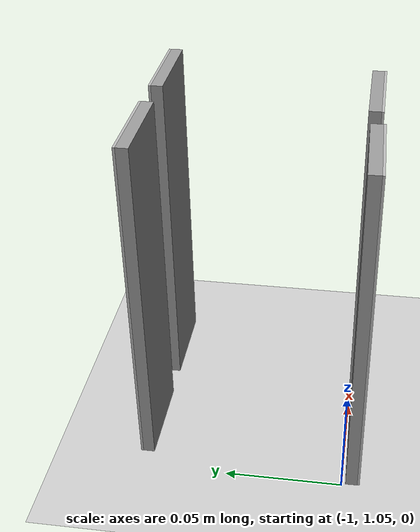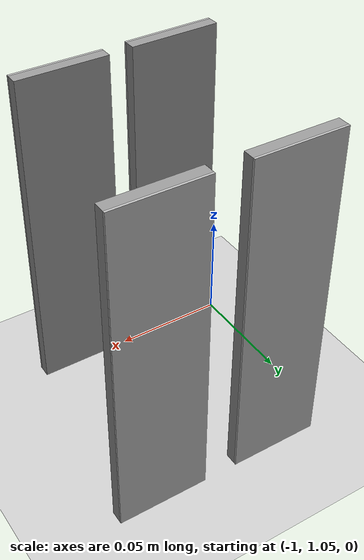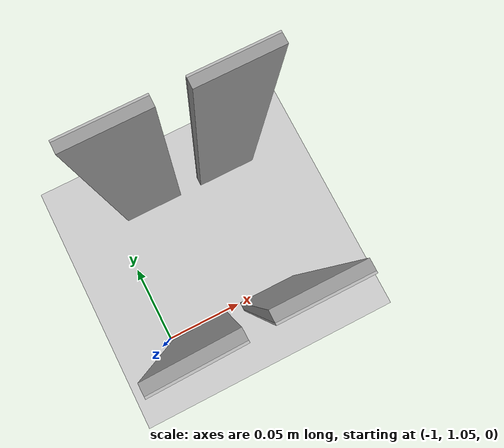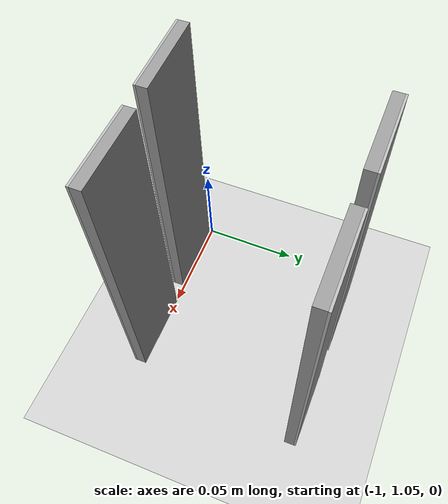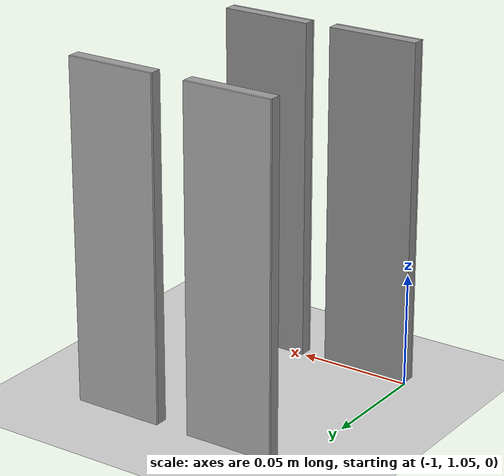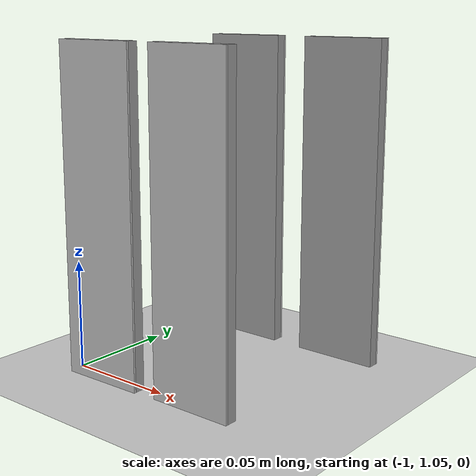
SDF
<sdf version="1.7">
 <world name="default">
  <model name="ground_plane">
   <static>1</static>
   <link name="link">
    <collision name="collision">
     <geometry><plane><normal>0 0 1</normal><size>100 100</size></plane></geometry>
     <surface>
      <contact><collide_bitmask>65535</collide_bitmask></contact>
      <friction><ode><mu>100</mu><mu2>50</mu2></ode></friction>
     </surface>
    </collision>
    <visual name="visual">
     <cast_shadows>0</cast_shadows>
     <geometry><plane><normal>0 0 1</normal><size>4.2 4.2</size></plane></geometry>
     <material><script><uri>file:///home/ros1/桌面/2/png1.material</uri><name>png1</name></script></material>
    </visual>
   </link>
  </model>
  <model name="F1">
   <link name="link_0">
    <inertial>
     <mass>1</mass>
     <inertia>
      <ixx>0.166667</ixx>
      <ixy>0</ixy>
      <ixz>0</ixz>
      <iyy>0.166667</iyy>
      <iyz>0</iyz>
      <izz>0.166667</izz>
     </inertia>
    </inertial>
    <pose>0 -0.0015 -0 0 -0 0</pose>
    <visual name="visual">
     <geometry><box><size>0.04 0.005 0.15</size></box></geometry>
     <material>
      <lighting>1</lighting>
      <script><uri>file://media/materials/scripts/gazebo.material</uri><name>Gazebo/Grey</name></script>
      <shader type="pixel"><normal_map>__default__</normal_map></shader>
      <ambient>0.3 0.3 0.3 1</ambient>
      <diffuse>0.7 0.7 0.7 1</diffuse>
      <specular>0.01 0.01 0.01 1</specular>
      <emissive>0 0 0 1</emissive>
     </material>
    </visual>
    <collision name="collision">
     <geometry><box><size>0.04 0.005 0.15</size></box></geometry>
     <surface>
      <friction>
       <ode><mu>1</mu><mu2>1</mu2><fdir1>0 0 0</fdir1><slip1>0</slip1><slip2>0</slip2></ode>
       <torsional>
        <coefficient>1</coefficient>
        <patch_radius>0</patch_radius>
        <surface_radius>0</surface_radius>
        <use_patch_radius>1</use_patch_radius>
        <ode><slip>0</slip></ode>
       </torsional>
      </friction>
      <bounce><restitution_coefficient>0</restitution_coefficient><threshold>1e+06</threshold></bounce>
      <contact>
       <collide_without_contact>0</collide_without_contact>
       <collide_without_contact_bitmask>1</collide_without_contact_bitmask>
       <collide_bitmask>1</collide_bitmask>
       <ode>
        <soft_cfm>0</soft_cfm>
        <soft_erp>0.2</soft_erp>
        <kp>1e+13</kp>
        <kd>1</kd>
        <max_vel>0.01</max_vel>
        <min_depth>0</min_depth>
       </ode>
       <bullet>
        <split_impulse>1</split_impulse>
        <split_impulse_penetration_threshold>-0.01</split_impulse_penetration_threshold>
        <soft_cfm>0</soft_cfm>
        <soft_erp>0.2</soft_erp>
        <kp>1e+13</kp>
        <kd>1</kd>
       </bullet>
      </contact>
     </surface>
    </collision>
   </link>
   <link name="link_4">
    <inertial>
     <mass>1</mass>
     <inertia>
      <ixx>0.166667</ixx>
      <ixy>0</ixy>
      <ixz>0</ixz>
      <iyy>0.166667</iyy>
      <iyz>0</iyz>
      <izz>0.166667</izz>
     </inertia>
    </inertial>
    <pose>0 0.0015 -0 0 -0 0</pose>
    <visual name="visual">
     <geometry><box><size>0.04 0.001 0.15</size></box></geometry>
     <material>
      <script><uri>file:///home/ros1/model_editor_models/F1/F1.material</uri><name>F1</name></script>
     </material>
    </visual>
    <collision name="collision">
     <geometry><box><size>0.04 0.001 0.15</size></box></geometry>
     <surface>
      <friction>
       <ode><mu>1</mu><mu2>1</mu2><fdir1>0 0 0</fdir1><slip1>0</slip1><slip2>0</slip2></ode>
       <torsional>
        <coefficient>1</coefficient>
        <patch_radius>0</patch_radius>
        <surface_radius>0</surface_radius>
        <use_patch_radius>1</use_patch_radius>
        <ode><slip>0</slip></ode>
       </torsional>
      </friction>
      <bounce><restitution_coefficient>0</restitution_coefficient><threshold>1e+06</threshold></bounce>
      <contact>
       <collide_without_contact>0</collide_without_contact>
       <collide_without_contact_bitmask>1</collide_without_contact_bitmask>
       <collide_bitmask>1</collide_bitmask>
       <ode>
        <soft_cfm>0</soft_cfm>
        <soft_erp>0.2</soft_erp>
        <kp>1e+13</kp>
        <kd>1</kd>
        <max_vel>0.01</max_vel>
        <min_depth>0</min_depth>
       </ode>
       <bullet>
        <split_impulse>1</split_impulse>
        <split_impulse_penetration_threshold>-0.01</split_impulse_penetration_threshold>
        <soft_cfm>0</soft_cfm>
        <soft_erp>0.2</soft_erp>
        <kp>1e+13</kp>
        <kd>1</kd>
       </bullet>
      </contact>
     </surface>
    </collision>
   </link>
   <static>0</static>
   <pose>-0.916044 1.13743 0.075 -1.4e-05 -3e-06 -5.4e-05</pose>
  </model>
  <model name="man-7">
   <link name="link_0">
    <inertial>
     <mass>1</mass>
     <inertia>
      <ixx>0.166667</ixx>
      <ixy>0</ixy>
      <ixz>0</ixz>
      <iyy>0.166667</iyy>
      <iyz>0</iyz>
      <izz>0.166667</izz>
     </inertia>
    </inertial>
    <pose>0 -0.0015 -0 0 -0 0</pose>
    <visual name="visual">
     <geometry><box><size>0.04 0.005 0.15</size></box></geometry>
     <material>
      <lighting>1</lighting>
      <script><uri>file://media/materials/scripts/gazebo.material</uri><name>Gazebo/Grey</name></script>
      <shader type="pixel"><normal_map>__default__</normal_map></shader>
      <ambient>0.3 0.3 0.3 1</ambient>
      <diffuse>0.7 0.7 0.7 1</diffuse>
      <specular>0.01 0.01 0.01 1</specular>
      <emissive>0 0 0 1</emissive>
     </material>
    </visual>
    <collision name="collision">
     <geometry><box><size>0.04 0.005 0.15</size></box></geometry>
     <surface>
      <friction>
       <ode><mu>1</mu><mu2>1</mu2><fdir1>0 0 0</fdir1><slip1>0</slip1><slip2>0</slip2></ode>
       <torsional>
        <coefficient>1</coefficient>
        <patch_radius>0</patch_radius>
        <surface_radius>0</surface_radius>
        <use_patch_radius>1</use_patch_radius>
        <ode><slip>0</slip></ode>
       </torsional>
      </friction>
      <bounce><restitution_coefficient>0</restitution_coefficient><threshold>1e+06</threshold></bounce>
      <contact>
       <collide_without_contact>0</collide_without_contact>
       <collide_without_contact_bitmask>1</collide_without_contact_bitmask>
       <collide_bitmask>1</collide_bitmask>
       <ode>
        <soft_cfm>0</soft_cfm>
        <soft_erp>0.2</soft_erp>
        <kp>1e+13</kp>
        <kd>1</kd>
        <max_vel>0.01</max_vel>
        <min_depth>0</min_depth>
       </ode>
       <bullet>
        <split_impulse>1</split_impulse>
        <split_impulse_penetration_threshold>-0.01</split_impulse_penetration_threshold>
        <soft_cfm>0</soft_cfm>
        <soft_erp>0.2</soft_erp>
        <kp>1e+13</kp>
        <kd>1</kd>
       </bullet>
      </contact>
     </surface>
    </collision>
   </link>
   <link name="link_4">
    <inertial>
     <mass>1</mass>
     <inertia>
      <ixx>0.166667</ixx>
      <ixy>0</ixy>
      <ixz>0</ixz>
      <iyy>0.166667</iyy>
      <iyz>0</iyz>
      <izz>0.166667</izz>
     </inertia>
    </inertial>
    <pose>0 0.0015 -0 0 -0 0</pose>
    <visual name="visual">
     <geometry><box><size>0.04 0.001 0.15</size></box></geometry>
     <material>
      <script><uri>file:///home/ros1/model_editor_models/man-7/man_7.material</uri><name>man_7</name></script>
     </material>
    </visual>
    <collision name="collision">
     <geometry><box><size>0.04 0.001 0.15</size></box></geometry>
     <surface>
      <friction>
       <ode><mu>1</mu><mu2>1</mu2><fdir1>0 0 0</fdir1><slip1>0</slip1><slip2>0</slip2></ode>
       <torsional>
        <coefficient>1</coefficient>
        <patch_radius>0</patch_radius>
        <surface_radius>0</surface_radius>
        <use_patch_radius>1</use_patch_radius>
        <ode><slip>0</slip></ode>
       </torsional>
      </friction>
      <bounce><restitution_coefficient>0</restitution_coefficient><threshold>1e+06</threshold></bounce>
      <contact>
       <collide_without_contact>0</collide_without_contact>
       <collide_without_contact_bitmask>1</collide_without_contact_bitmask>
       <collide_bitmask>1</collide_bitmask>
       <ode>
        <soft_cfm>0</soft_cfm>
        <soft_erp>0.2</soft_erp>
        <kp>1e+13</kp>
        <kd>1</kd>
        <max_vel>0.01</max_vel>
        <min_depth>0</min_depth>
       </ode>
       <bullet>
        <split_impulse>1</split_impulse>
        <split_impulse_penetration_threshold>-0.01</split_impulse_penetration_threshold>
        <soft_cfm>0</soft_cfm>
        <soft_erp>0.2</soft_erp>
        <kp>1e+13</kp>
        <kd>1</kd>
       </bullet>
      </contact>
     </surface>
    </collision>
   </link>
   <static>0</static>
   <pose>-0.979134 1.04472 0.075 2e-06 1.6e-05 -3.12381</pose>
  </model>
  <model name="F2">
   <link name="link_0">
    <inertial>
     <mass>1</mass>
     <inertia>
      <ixx>0.166667</ixx>
      <ixy>0</ixy>
      <ixz>0</ixz>
      <iyy>0.166667</iyy>
      <iyz>0</iyz>
      <izz>0.166667</izz>
     </inertia>
    </inertial>
    <pose>0 -0.0015 -0 0 -0 0</pose>
    <visual name="visual">
     <geometry><box><size>0.04 0.005 0.15</size></box></geometry>
     <material>
      <lighting>1</lighting>
      <script><uri>file://media/materials/scripts/gazebo.material</uri><name>Gazebo/Grey</name></script>
      <shader type="pixel"><normal_map>__default__</normal_map></shader>
      <ambient>0.3 0.3 0.3 1</ambient>
      <diffuse>0.7 0.7 0.7 1</diffuse>
      <specular>0.01 0.01 0.01 1</specular>
      <emissive>0 0 0 1</emissive>
     </material>
    </visual>
    <collision name="collision">
     <geometry><box><size>0.04 0.005 0.15</size></box></geometry>
     <surface>
      <friction>
       <ode><mu>1</mu><mu2>1</mu2><fdir1>0 0 0</fdir1><slip1>0</slip1><slip2>0</slip2></ode>
       <torsional>
        <coefficient>1</coefficient>
        <patch_radius>0</patch_radius>
        <surface_radius>0</surface_radius>
        <use_patch_radius>1</use_patch_radius>
        <ode><slip>0</slip></ode>
       </torsional>
      </friction>
      <bounce><restitution_coefficient>0</restitution_coefficient><threshold>1e+06</threshold></bounce>
      <contact>
       <collide_without_contact>0</collide_without_contact>
       <collide_without_contact_bitmask>1</collide_without_contact_bitmask>
       <collide_bitmask>1</collide_bitmask>
       <ode>
        <soft_cfm>0</soft_cfm>
        <soft_erp>0.2</soft_erp>
        <kp>1e+13</kp>
        <kd>1</kd>
        <max_vel>0.01</max_vel>
        <min_depth>0</min_depth>
       </ode>
       <bullet>
        <split_impulse>1</split_impulse>
        <split_impulse_penetration_threshold>-0.01</split_impulse_penetration_threshold>
        <soft_cfm>0</soft_cfm>
        <soft_erp>0.2</soft_erp>
        <kp>1e+13</kp>
        <kd>1</kd>
       </bullet>
      </contact>
     </surface>
    </collision>
   </link>
   <link name="link_4">
    <inertial>
     <mass>1</mass>
     <inertia>
      <ixx>0.166667</ixx>
      <ixy>0</ixy>
      <ixz>0</ixz>
      <iyy>0.166667</iyy>
      <iyz>0</iyz>
      <izz>0.166667</izz>
     </inertia>
    </inertial>
    <pose>0 0.0015 -0 0 -0 0</pose>
    <visual name="visual">
     <geometry><box><size>0.04 0.001 0.15</size></box></geometry>
     <material>
      <script><uri>file:///home/ros1/model_editor_models/F2/F2.material</uri><name>F2</name></script>
     </material>
    </visual>
    <collision name="collision">
     <geometry><box><size>0.04 0.001 0.15</size></box></geometry>
     <surface>
      <friction>
       <ode><mu>1</mu><mu2>1</mu2><fdir1>0 0 0</fdir1><slip1>0</slip1><slip2>0</slip2></ode>
       <torsional>
        <coefficient>1</coefficient>
        <patch_radius>0</patch_radius>
        <surface_radius>0</surface_radius>
        <use_patch_radius>1</use_patch_radius>
        <ode><slip>0</slip></ode>
       </torsional>
      </friction>
      <bounce><restitution_coefficient>0</restitution_coefficient><threshold>1e+06</threshold></bounce>
      <contact>
       <collide_without_contact>0</collide_without_contact>
       <collide_without_contact_bitmask>1</collide_without_contact_bitmask>
       <collide_bitmask>1</collide_bitmask>
       <ode>
        <soft_cfm>0</soft_cfm>
        <soft_erp>0.2</soft_erp>
        <kp>1e+13</kp>
        <kd>1</kd>
        <max_vel>0.01</max_vel>
        <min_depth>0</min_depth>
       </ode>
       <bullet>
        <split_impulse>1</split_impulse>
        <split_impulse_penetration_threshold>-0.01</split_impulse_penetration_threshold>
        <soft_cfm>0</soft_cfm>
        <soft_erp>0.2</soft_erp>
        <kp>1e+13</kp>
        <kd>1</kd>
       </bullet>
      </contact>
     </surface>
    </collision>
   </link>
   <static>0</static>
   <pose>-0.928452 1.04611 0.075 -2e-06 2e-06 -3.14147</pose>
  </model>
  <model name="man-16">
   <link name="link_0">
    <inertial>
     <mass>1</mass>
     <inertia>
      <ixx>0.166667</ixx>
      <ixy>0</ixy>
      <ixz>0</ixz>
      <iyy>0.166667</iyy>
      <iyz>0</iyz>
      <izz>0.166667</izz>
     </inertia>
    </inertial>
    <pose>0 -0.0015 -0 0 -0 0</pose>
    <visual name="visual">
     <geometry><box><size>0.04 0.005 0.15</size></box></geometry>
     <material>
      <lighting>1</lighting>
      <script><uri>file://media/materials/scripts/gazebo.material</uri><name>Gazebo/Grey</name></script>
      <shader type="pixel"><normal_map>__default__</normal_map></shader>
      <ambient>0.3 0.3 0.3 1</ambient>
      <diffuse>0.7 0.7 0.7 1</diffuse>
      <specular>0.01 0.01 0.01 1</specular>
      <emissive>0 0 0 1</emissive>
     </material>
    </visual>
    <collision name="collision">
     <geometry><box><size>0.04 0.005 0.15</size></box></geometry>
     <surface>
      <friction>
       <ode><mu>1</mu><mu2>1</mu2><fdir1>0 0 0</fdir1><slip1>0</slip1><slip2>0</slip2></ode>
       <torsional>
        <coefficient>1</coefficient>
        <patch_radius>0</patch_radius>
        <surface_radius>0</surface_radius>
        <use_patch_radius>1</use_patch_radius>
        <ode><slip>0</slip></ode>
       </torsional>
      </friction>
      <bounce><restitution_coefficient>0</restitution_coefficient><threshold>1e+06</threshold></bounce>
      <contact>
       <collide_without_contact>0</collide_without_contact>
       <collide_without_contact_bitmask>1</collide_without_contact_bitmask>
       <collide_bitmask>1</collide_bitmask>
       <ode>
        <soft_cfm>0</soft_cfm>
        <soft_erp>0.2</soft_erp>
        <kp>1e+13</kp>
        <kd>1</kd>
        <max_vel>0.01</max_vel>
        <min_depth>0</min_depth>
       </ode>
       <bullet>
        <split_impulse>1</split_impulse>
        <split_impulse_penetration_threshold>-0.01</split_impulse_penetration_threshold>
        <soft_cfm>0</soft_cfm>
        <soft_erp>0.2</soft_erp>
        <kp>1e+13</kp>
        <kd>1</kd>
       </bullet>
      </contact>
     </surface>
    </collision>
   </link>
   <link name="link_4">
    <inertial>
     <mass>1</mass>
     <inertia>
      <ixx>0.166667</ixx>
      <ixy>0</ixy>
      <ixz>0</ixz>
      <iyy>0.166667</iyy>
      <iyz>0</iyz>
      <izz>0.166667</izz>
     </inertia>
    </inertial>
    <pose>0 0.0015 -0 0 -0 0</pose>
    <visual name="visual">
     <geometry><box><size>0.04 0.001 0.15</size></box></geometry>
     <material>
      <script><uri>file:///home/ros1/model_editor_models/man-16/man_16.material</uri><name>man_16</name></script>
     </material>
    </visual>
    <collision name="collision">
     <geometry><box><size>0.04 0.001 0.15</size></box></geometry>
     <surface>
      <friction>
       <ode><mu>1</mu><mu2>1</mu2><fdir1>0 0 0</fdir1><slip1>0</slip1><slip2>0</slip2></ode>
       <torsional>
        <coefficient>1</coefficient>
        <patch_radius>0</patch_radius>
        <surface_radius>0</surface_radius>
        <use_patch_radius>1</use_patch_radius>
        <ode><slip>0</slip></ode>
       </torsional>
      </friction>
      <bounce><restitution_coefficient>0</restitution_coefficient><threshold>1e+06</threshold></bounce>
      <contact>
       <collide_without_contact>0</collide_without_contact>
       <collide_without_contact_bitmask>1</collide_without_contact_bitmask>
       <collide_bitmask>1</collide_bitmask>
       <ode>
        <soft_cfm>0</soft_cfm>
        <soft_erp>0.2</soft_erp>
        <kp>1e+13</kp>
        <kd>1</kd>
        <max_vel>0.01</max_vel>
        <min_depth>0</min_depth>
       </ode>
       <bullet>
        <split_impulse>1</split_impulse>
        <split_impulse_penetration_threshold>-0.01</split_impulse_penetration_threshold>
        <soft_cfm>0</soft_cfm>
        <soft_erp>0.2</soft_erp>
        <kp>1e+13</kp>
        <kd>1</kd>
       </bullet>
      </contact>
     </surface>
    </collision>
   </link>
   <static>0</static>
   <pose>-0.971227 1.13751 0.075 1.6e-05 2e-06 -5.4e-05</pose>
  </model>
 </world>
</sdf>
